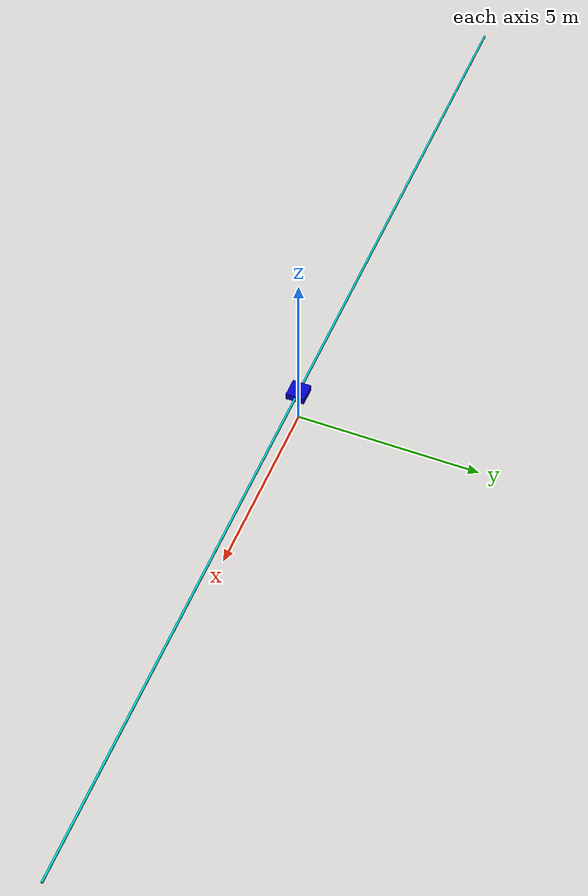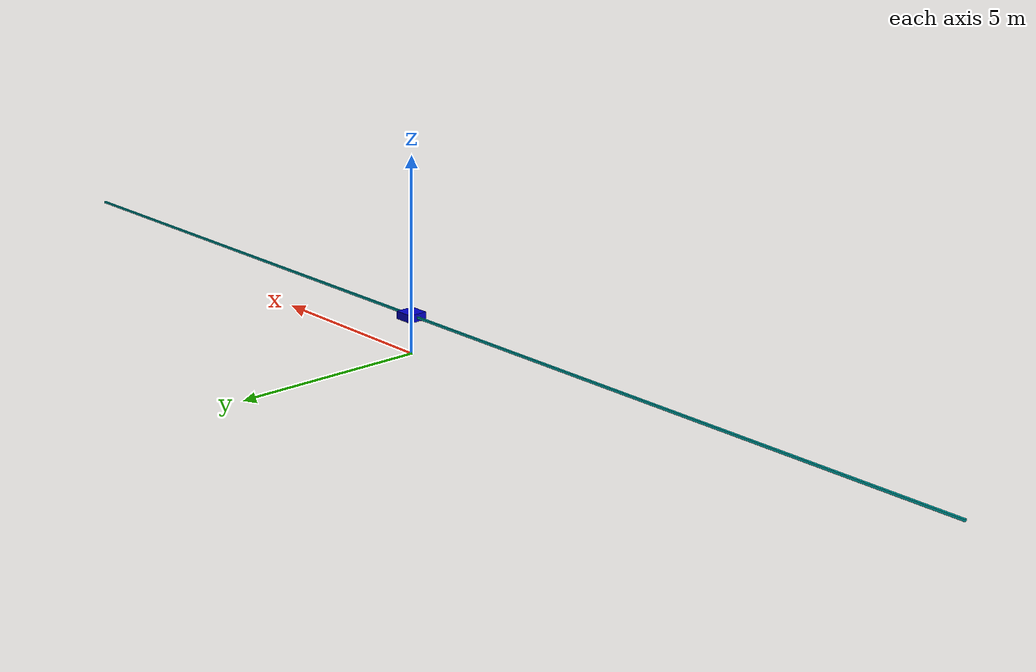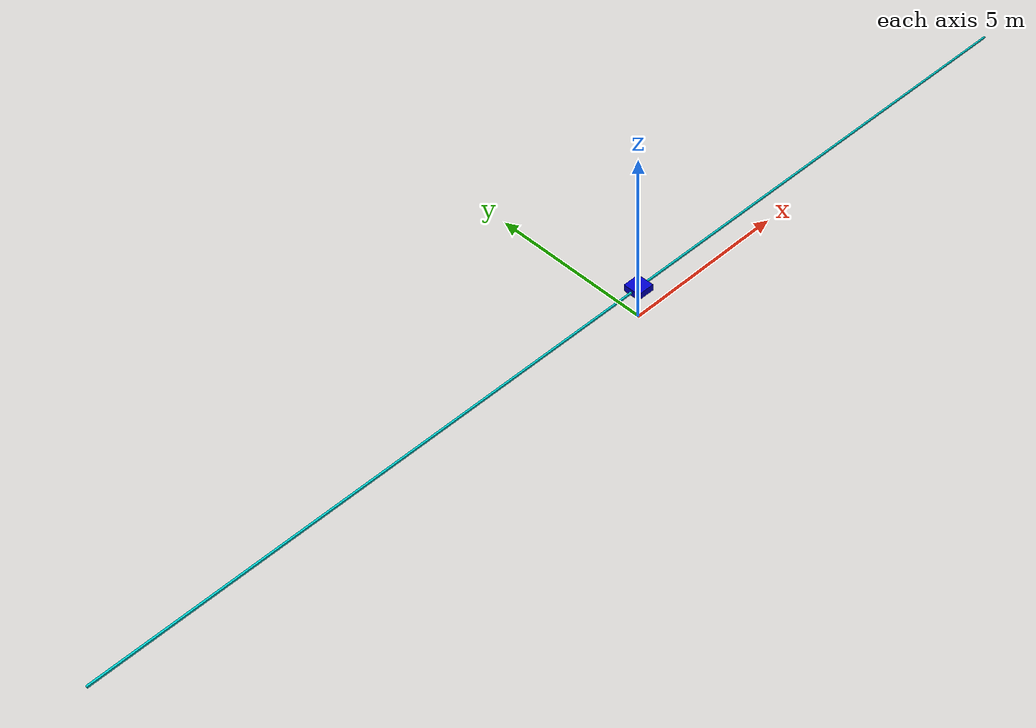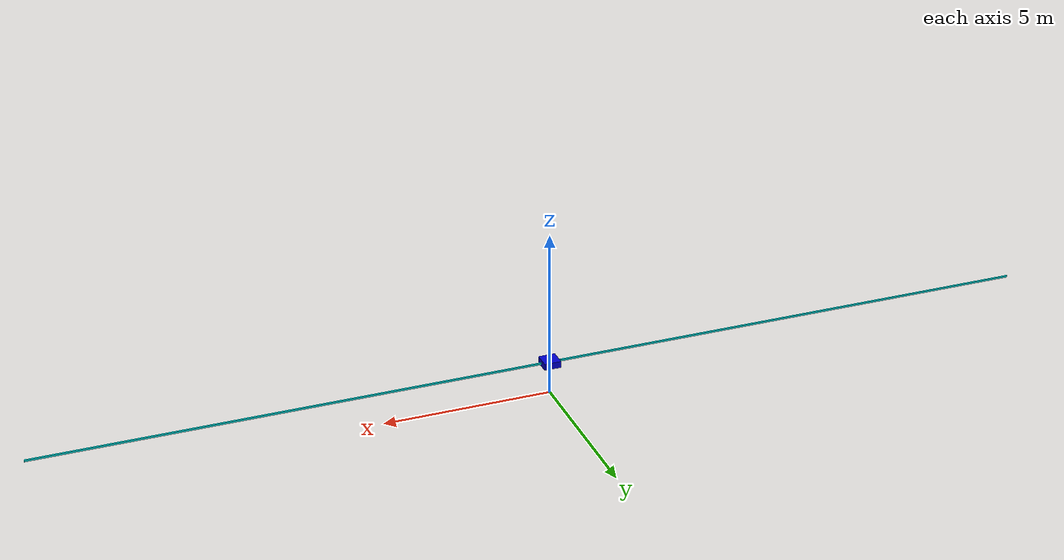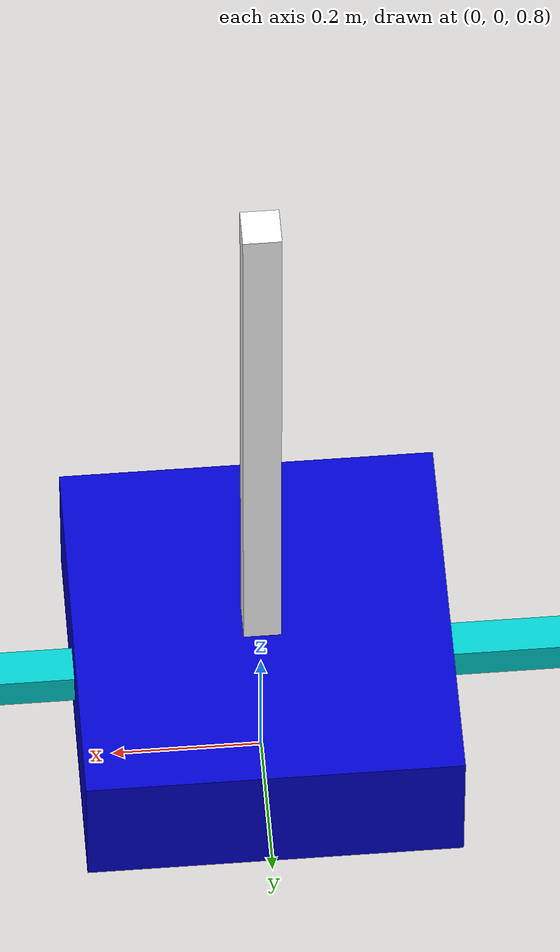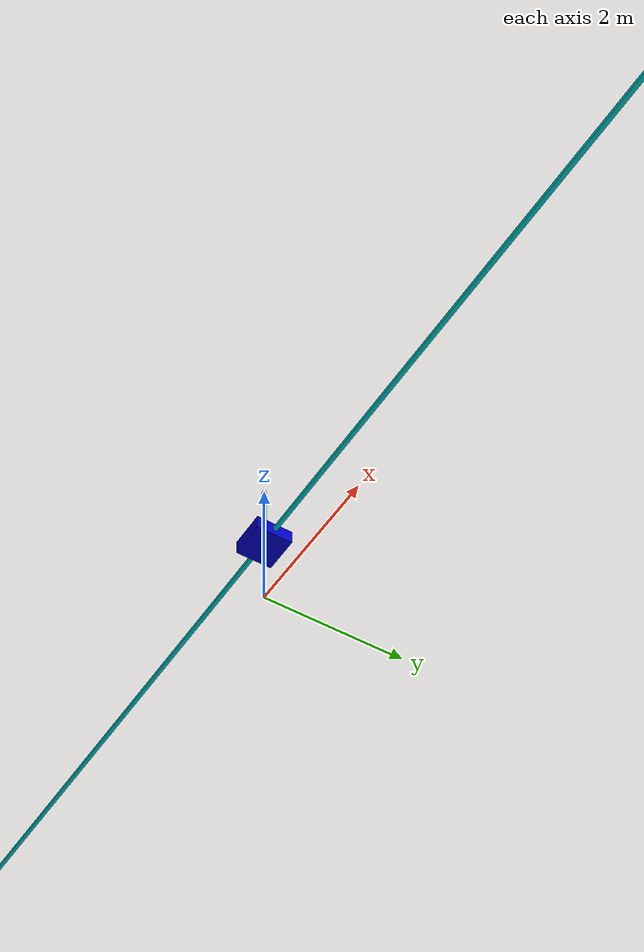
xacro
<?xml version="1.0"?>
<robot name="cartopole" xmlns:xacro="http://ros.org/wiki/xacro">

  <link name="world"/>

  <link name="slideBar">
    <visual>
      <geometry>
        <box size="30 0.05 0.05"/>
      </geometry>
      <origin xyz="0 0 0"/>
      <material name="green">
        <color rgba="0 0.8 .8 1"/>
      </material>
    </visual>
    <inertial>
      <mass value="100"/>
      <inertia ixx="1.0" ixy="0.0" ixz="0.0" iyy="1.0" iyz="0.0" izz="1.0"/>
    </inertial>
  </link>

  <link name="cart">
    <visual>
      <geometry>
        <box size="0.5 0.5 0.2"/>
      </geometry>
      <origin xyz="0 0 0"/>
      <material name="blue">
        <color rgba="0 0 .8 1"/>
      </material>
    </visual>
    <inertial>
      <mass value="1"/>
      <inertia ixx="1.0" ixy="0.0" ixz="0.0" iyy="1.0" iyz="0.0" izz="1.0"/>
    </inertial>
  </link>

  <joint name="world_to_base" type="fixed">
    <origin xyz="0 0 1" rpy="0 0 0"/>
    <parent link="world"/>
    <child link="slideBar"/>
  </joint>

  <joint name="slider_to_cart" type="prismatic">
    <axis xyz="1 0 0"/>
    <origin xyz="0.0 0.0 0.0"/>
    <parent link="slideBar"/>
    <child link="cart"/>
    <limit effort="1000.0" lower="-15" upper="15" velocity="30"/>
    <dynamics damping="0.0" friction="0.0" />
  </joint>

  <link name="pole">
    <visual>
      <geometry>
        <box size="0.05 0.05 1.0"/>
      </geometry>
      <origin rpy="0 0 0" xyz="0 0 0.5"/>
      <material name="white">
        <color rgba="1 1 1 1"/>
      </material>
    </visual>
    <inertial>
    <origin xyz="0 0 0.5"/>
      <mass value="10"/>
      <inertia ixx="1.0" ixy="0.0" ixz="0.0" iyy="1.0" iyz="0.0" izz="1.0"/>
    </inertial>
  </link>

  <joint name="cart_to_pole" type="continuous">
    <axis xyz="0 1 0"/>
    <origin xyz="0.0 0.0 0"/>
    <parent link="cart"/>
    <child link="pole"/>
    <dynamics damping="0.0" friction="0.0" />
  </joint>

  <ros2_control name="GazeboSimSystem" type="system">
    <hardware>
      <plugin>gz_ros2_control/GazeboSimSystem</plugin>
    </hardware>

    <joint name="slider_to_cart">
      <command_interface name="velocity">
        <param name="min">-15.0</param>
        <param name="max">15.0</param>
      </command_interface>
      <state_interface name="position"/>
      <state_interface name="velocity"/>
    </joint>

    <joint name="cart_to_pole">
      <state_interface name="position"/>
      <state_interface name="velocity"/>
    </joint>
  </ros2_control>

  <gazebo>
    <plugin filename="libgz_ros2_control-system"
            name="gz_ros2_control::GazeboSimROS2ControlPlugin">
      <parameters>$(find my_agent_description)/urdf/cartpole/config/cartpole_manager.yaml</parameters>
      <controller_manager_prefix_node_name>cartpole_manager</controller_manager_prefix_node_name>
    </plugin>
  </gazebo>

</robot>
